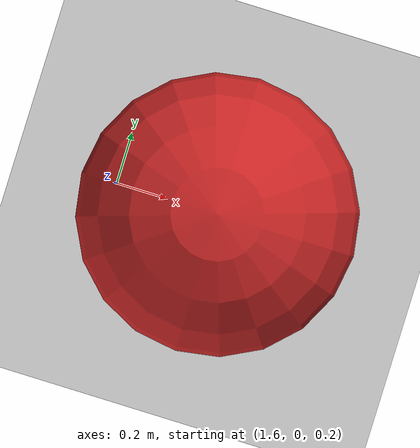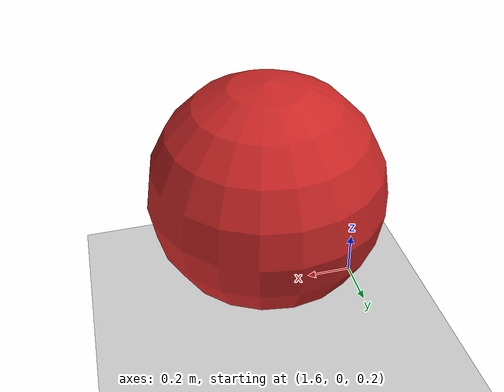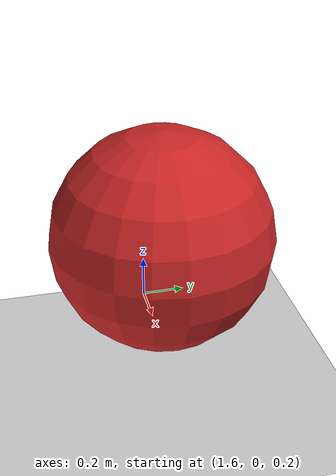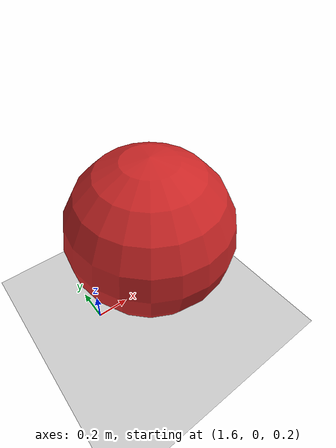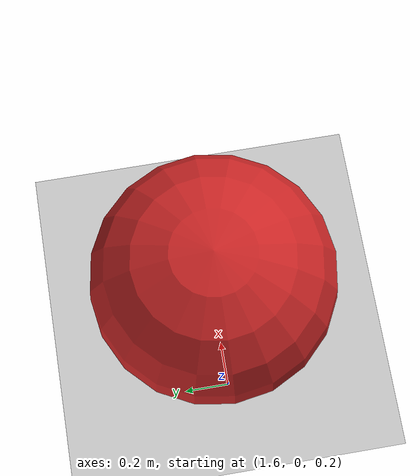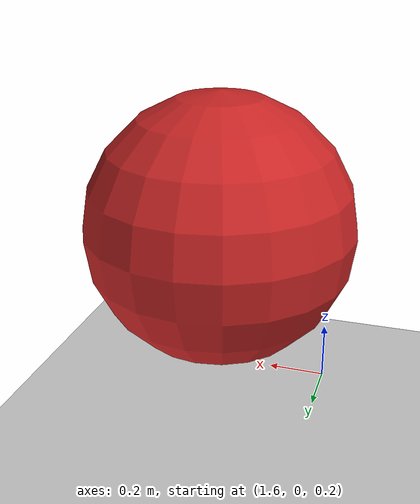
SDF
<?xml version="1.0" ?>
<sdf version="1.6">
  <world name="default">
    <include>
      <uri>model://sun</uri>
    </include>
    <include>
      <uri>model://ground_plane</uri>
    </include>

    <model name='target'>
      <pose>2 0 0.75 0 0 0</pose>
      <link name='link'>
        <inertial>
          <mass>1.0</mass>
          <inertia>
            <ixx>0.1</ixx>
            <ixy>0</ixy>
            <ixz>0</ixz>
            <iyy>0.1</iyy>
            <iyz>0</iyz>
            <izz>0.1</izz>
          </inertia>
        </inertial>
        <collision name='collision'>
          <geometry>
            <sphere>
              <radius>0.5</radius>
            </sphere>
          </geometry>
        </collision>
        <visual name='visual'>
          <geometry>
            <sphere>
              <radius>0.5</radius>
            </sphere>
          </geometry>
          <material>
            <script>
              <uri>file://media/materials/scripts/gazebo.material</uri>
              <name>Gazebo/Red</name>
            </script>
          </material>
        </visual>
      </link>
      <plugin name="target_planar_move" filename="libgazebo_ros_planar_move.so">
        <ros>
          <remapping>cmd_vel:=target_cmd_vel</remapping>
        </ros>
        <update_rate>30</update_rate>
        <publish_rate>30</publish_rate>
        <publish_odom>true</publish_odom>
        <publish_odom_tf>true</publish_odom_tf>
        <odometry_frame>odom</odometry_frame>
        <robot_base_frame>link</robot_base_frame>
      </plugin>
    </model>
  </world>
</sdf>
